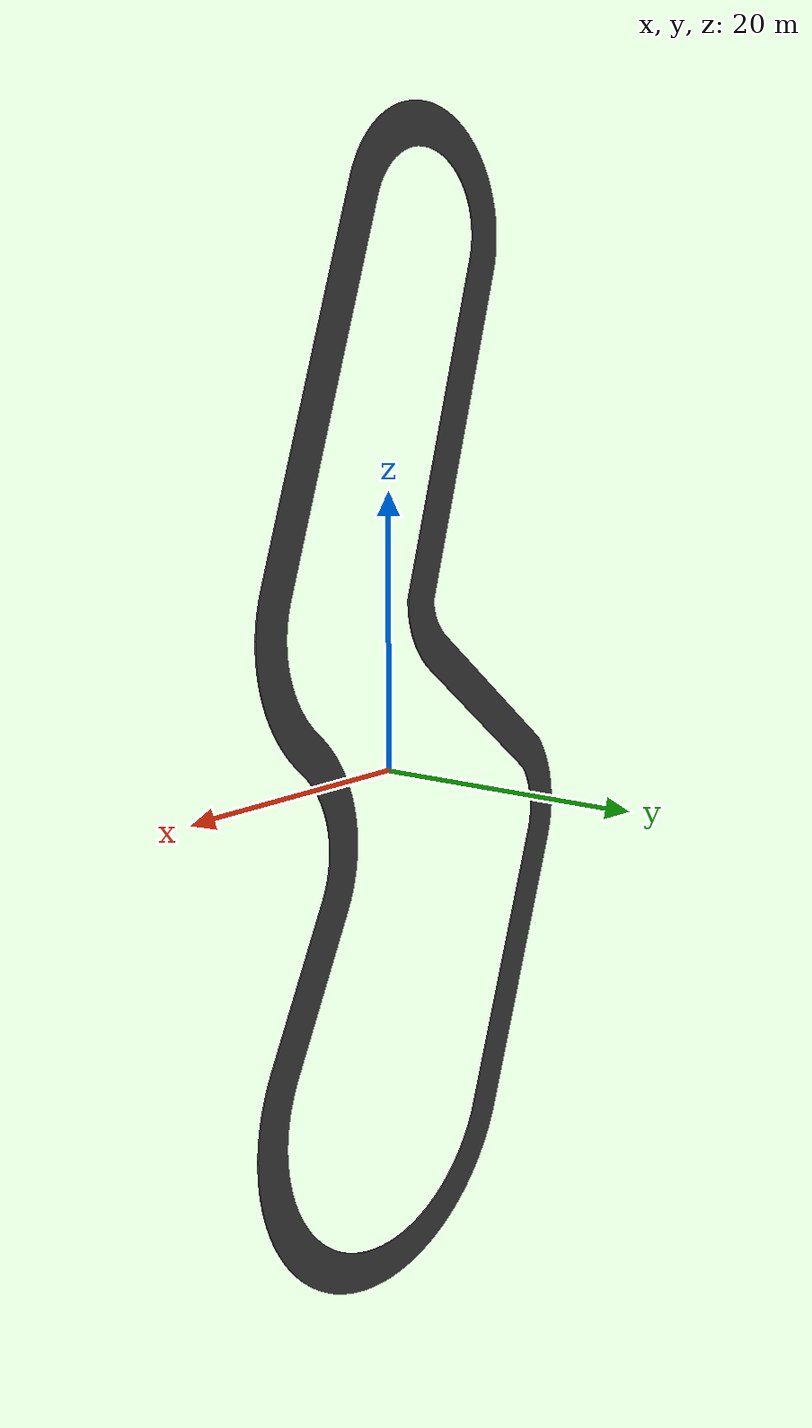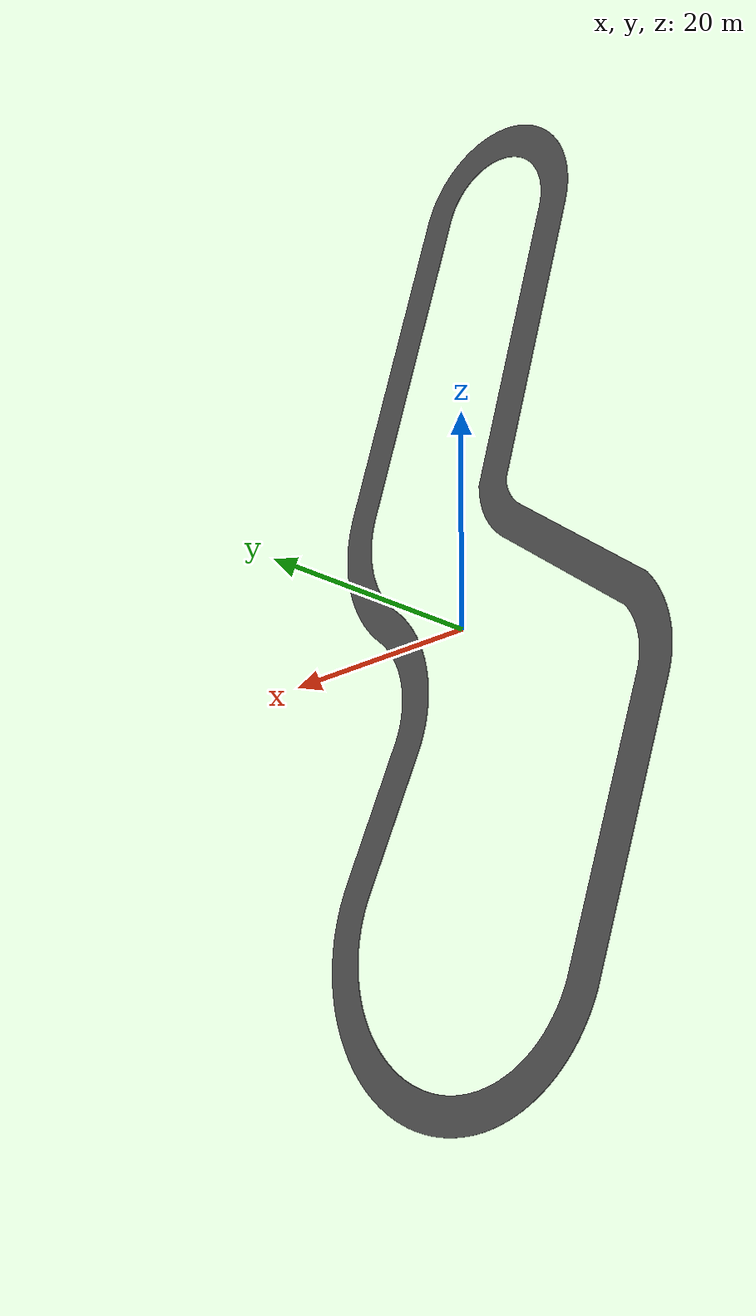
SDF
<?xml version='1.0'?>
<sdf version='1.6'>
  <model name="road1">
    <static>true</static>
    <pose>0 0 0 0 0 0</pose>

    <link name="road1">
      <pose>0 0 0 0 0 0</pose>
      <visual name="road">
      <material>
            <script>
                <uri>model://road1/materials/scripts</uri>
                <uri>model://road1/materials/textures</uri>
                <name>vrc/road</name>
            </script>
        </material>
        <geometry>
          <mesh>
            <uri>model://road1/meshes/RT1_Road.dae</uri>
          </mesh>
        </geometry>
      </visual>
      <collision name="road">
        <geometry>
          <mesh>
            <uri>model://road1/meshes/RT1_Road.dae</uri>
          </mesh>
        </geometry>
      </collision>
    </link>

  </model>
</sdf>
